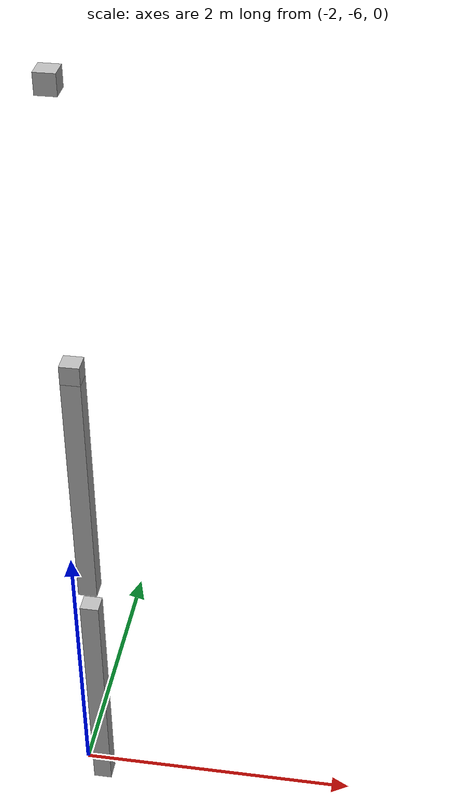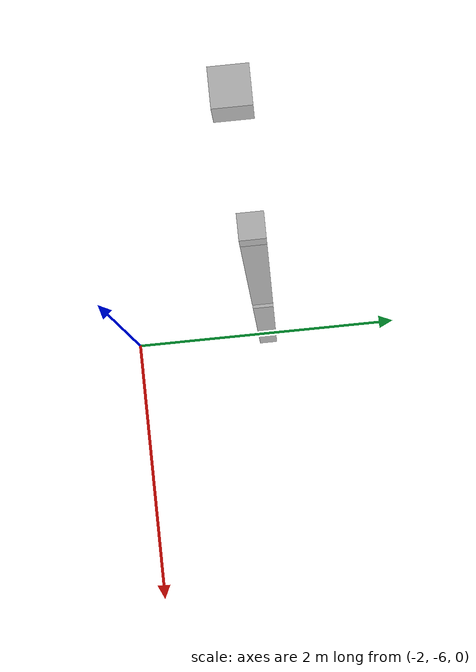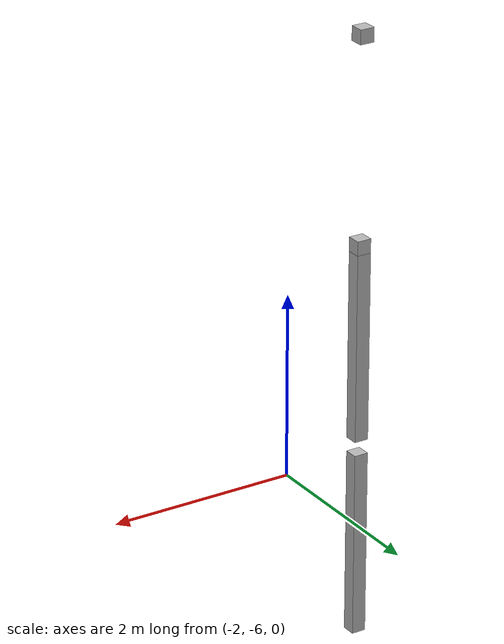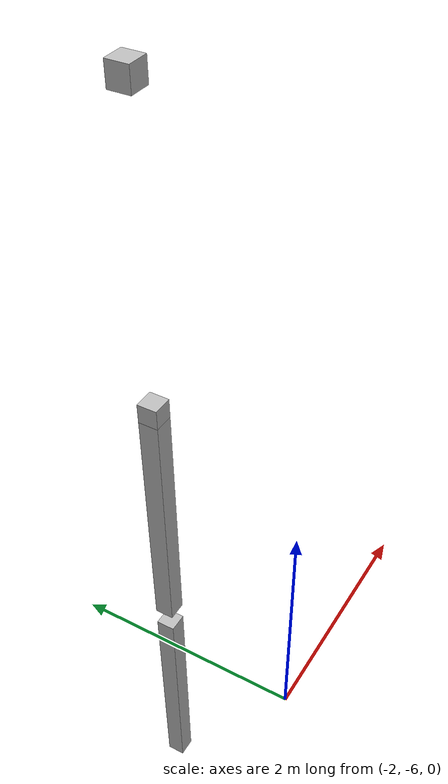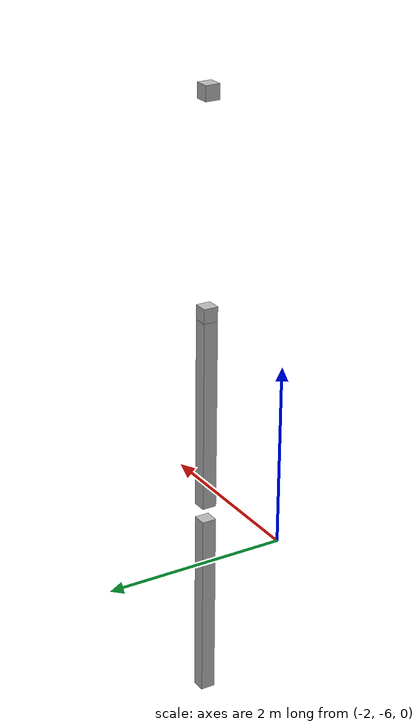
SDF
<sdf version="1.7">
 <world name="default">
  <model name="orthogonal_747_2.000.15_TS">
   <static>1</static>
   <link name="z_link_1_0_2">
    <inertial>
     <mass>1</mass>
     <inertia>
      <ixx>0.166667</ixx>
      <ixy>0</ixy>
      <ixz>0</ixz>
      <iyy>0.166667</iyy>
      <iyz>0</iyz>
      <izz>0.166667</izz>
     </inertia>
    </inertial>
    <pose>4.3 0 2.15 0 -0 0</pose>
    <visual name="visual_0">
     <laser_retro>827</laser_retro>
     <geometry><box><size>0.15 1e-06 2</size></box></geometry>
     <material>
      <script><name>Gazebo/Grey</name><uri>file://media/materials/scripts/gazebo.material</uri></script>
      <shader type="pixel"><normal_map>__default__</normal_map></shader>
      <ambient>0.678 0.498 0.659 1</ambient>
      <diffuse>0.7 0.7 0.7 1</diffuse>
      <specular>0.01 0.01 0.01 1</specular>
      <emissive>0 0 0 1</emissive>
     </material>
     <pose>0 -0.075 0 0 -0 0</pose>
     <transparency>1</transparency>
    </visual>
    <visual name="visual_1">
     <laser_retro>828</laser_retro>
     <geometry><box><size>0.15 1e-06 2</size></box></geometry>
     <material>
      <script><name>Gazebo/Grey</name><uri>file://media/materials/scripts/gazebo.material</uri></script>
      <shader type="pixel"><normal_map>__default__</normal_map></shader>
      <ambient>0.447 0.624 0.812 1</ambient>
      <diffuse>0.7 0.7 0.7 1</diffuse>
      <specular>0.01 0.01 0.01 1</specular>
      <emissive>0 0 0 1</emissive>
     </material>
     <pose>0 0.075 0 0 -0 0</pose>
     <transparency>1</transparency>
    </visual>
    <visual name="visual_2">
     <laser_retro>829</laser_retro>
     <geometry><box><size>0.15 0.15 1e-06</size></box></geometry>
     <material>
      <script><name>Gazebo/Grey</name><uri>file://media/materials/scripts/gazebo.material</uri></script>
      <shader type="pixel"><normal_map>__default__</normal_map></shader>
      <ambient>0.988 0.686 0.243 1</ambient>
      <diffuse>0.7 0.7 0.7 1</diffuse>
      <specular>0.01 0.01 0.01 1</specular>
      <emissive>0 0 0 1</emissive>
     </material>
     <pose>0 0 -1 0 -0 0</pose>
     <transparency>1</transparency>
    </visual>
    <visual name="visual_3">
     <laser_retro>830</laser_retro>
     <geometry><box><size>1e-06 0.15 2</size></box></geometry>
     <material>
      <script><name>Gazebo/Grey</name><uri>file://media/materials/scripts/gazebo.material</uri></script>
      <shader type="pixel"><normal_map>__default__</normal_map></shader>
      <ambient>0.988 0.914 0.31 1</ambient>
      <diffuse>0.7 0.7 0.7 1</diffuse>
      <specular>0.01 0.01 0.01 1</specular>
      <emissive>0 0 0 1</emissive>
     </material>
     <pose>0.075 0 0 0 -0 0</pose>
     <transparency>1</transparency>
    </visual>
    <visual name="visual_4">
     <laser_retro>831</laser_retro>
     <geometry><box><size>0.15 0.15 1e-06</size></box></geometry>
     <material>
      <script><name>Gazebo/Grey</name><uri>file://media/materials/scripts/gazebo.material</uri></script>
      <shader type="pixel"><normal_map>__default__</normal_map></shader>
      <ambient>0.937 0.161 0.161 1</ambient>
      <diffuse>0.7 0.7 0.7 1</diffuse>
      <specular>0.01 0.01 0.01 1</specular>
      <emissive>0 0 0 1</emissive>
     </material>
     <pose>0 0 1 0 -0 0</pose>
     <transparency>1</transparency>
    </visual>
    <visual name="visual_5">
     <laser_retro>832</laser_retro>
     <geometry><box><size>1e-06 0.15 2</size></box></geometry>
     <material>
      <script><name>Gazebo/Grey</name><uri>file://media/materials/scripts/gazebo.material</uri></script>
      <shader type="pixel"><normal_map>__default__</normal_map></shader>
      <ambient>0.541 0.886 0.204 1</ambient>
      <diffuse>0.7 0.7 0.7 1</diffuse>
      <specular>0.01 0.01 0.01 1</specular>
      <emissive>0 0 0 1</emissive>
     </material>
     <pose>-0.075 0 0 0 -0 0</pose>
     <transparency>1</transparency>
    </visual>
    <visual name="visual_texture">
     <geometry><box><size>0.149985 0.149985 1.9998</size></box></geometry>
     <material>
      <script>
       <uri>model://BASE_MODELS/simple_block_v2_textured/materials/scripts</uri>
       <uri>model://BASE_MODELS/simple_block_v2_textured/materials/textures</uri>
       <name>metal</name>
      </script>
     </material>
     <laser_retro>833</laser_retro>
    </visual>
    <collision name="collision">
     <geometry><box><size>0.15 0.15 2</size></box></geometry>
     <surface>
      <friction>
       <ode><mu>1</mu><mu2>1</mu2><fdir1>0 0 0</fdir1><slip1>0</slip1><slip2>0</slip2></ode>
       <torsional>
        <coefficient>1</coefficient>
        <patch_radius>0</patch_radius>
        <surface_radius>0</surface_radius>
        <use_patch_radius>1</use_patch_radius>
        <ode><slip>0</slip></ode>
       </torsional>
      </friction>
      <bounce><restitution_coefficient>0</restitution_coefficient><threshold>1e+06</threshold></bounce>
      <contact>
       <collide_without_contact>0</collide_without_contact>
       <collide_without_contact_bitmask>1</collide_without_contact_bitmask>
       <collide_bitmask>1</collide_bitmask>
       <ode>
        <soft_cfm>0</soft_cfm>
        <soft_erp>0.2</soft_erp>
        <kp>1e+13</kp>
        <kd>1</kd>
        <max_vel>0.01</max_vel>
        <min_depth>0</min_depth>
       </ode>
       <bullet>
        <split_impulse>1</split_impulse>
        <split_impulse_penetration_threshold>-0.01</split_impulse_penetration_threshold>
        <soft_cfm>0</soft_cfm>
        <soft_erp>0.2</soft_erp>
        <kp>1e+13</kp>
        <kd>1</kd>
       </bullet>
      </contact>
     </surface>
    </collision>
   </link>
   <link name="u_link_2_0_2">
    <inertial>
     <mass>1</mass>
     <inertia>
      <ixx>0.166667</ixx>
      <ixy>0</ixy>
      <ixz>0</ixz>
      <iyy>0.166667</iyy>
      <iyz>0</iyz>
      <izz>0.166667</izz>
     </inertia>
    </inertial>
    <pose>4.3 0 5.375 0 -0 0</pose>
    <visual name="visual_0">
     <laser_retro>1723</laser_retro>
     <geometry><box><size>0.15 1e-06 0.15</size></box></geometry>
     <material>
      <script><name>Gazebo/Grey</name><uri>file://media/materials/scripts/gazebo.material</uri></script>
      <shader type="pixel"><normal_map>__default__</normal_map></shader>
      <ambient>0.678 0.498 0.659 1</ambient>
      <diffuse>0.7 0.7 0.7 1</diffuse>
      <specular>0.01 0.01 0.01 1</specular>
      <emissive>0 0 0 1</emissive>
     </material>
     <pose>0 -0.075 0 0 -0 0</pose>
     <transparency>1</transparency>
    </visual>
    <visual name="visual_1">
     <laser_retro>1724</laser_retro>
     <geometry><box><size>0.15 1e-06 0.15</size></box></geometry>
     <material>
      <script><name>Gazebo/Grey</name><uri>file://media/materials/scripts/gazebo.material</uri></script>
      <shader type="pixel"><normal_map>__default__</normal_map></shader>
      <ambient>0.447 0.624 0.812 1</ambient>
      <diffuse>0.7 0.7 0.7 1</diffuse>
      <specular>0.01 0.01 0.01 1</specular>
      <emissive>0 0 0 1</emissive>
     </material>
     <pose>0 0.075 0 0 -0 0</pose>
     <transparency>1</transparency>
    </visual>
    <visual name="visual_2">
     <laser_retro>1725</laser_retro>
     <geometry><box><size>0.15 0.15 1e-06</size></box></geometry>
     <material>
      <script><name>Gazebo/Grey</name><uri>file://media/materials/scripts/gazebo.material</uri></script>
      <shader type="pixel"><normal_map>__default__</normal_map></shader>
      <ambient>0.988 0.686 0.243 1</ambient>
      <diffuse>0.7 0.7 0.7 1</diffuse>
      <specular>0.01 0.01 0.01 1</specular>
      <emissive>0 0 0 1</emissive>
     </material>
     <pose>0 0 -0.075 0 -0 0</pose>
     <transparency>1</transparency>
    </visual>
    <visual name="visual_3">
     <laser_retro>1726</laser_retro>
     <geometry><box><size>1e-06 0.15 0.15</size></box></geometry>
     <material>
      <script><name>Gazebo/Grey</name><uri>file://media/materials/scripts/gazebo.material</uri></script>
      <shader type="pixel"><normal_map>__default__</normal_map></shader>
      <ambient>0.988 0.914 0.31 1</ambient>
      <diffuse>0.7 0.7 0.7 1</diffuse>
      <specular>0.01 0.01 0.01 1</specular>
      <emissive>0 0 0 1</emissive>
     </material>
     <pose>0.075 0 0 0 -0 0</pose>
     <transparency>1</transparency>
    </visual>
    <visual name="visual_4">
     <laser_retro>1727</laser_retro>
     <geometry><box><size>0.15 0.15 1e-06</size></box></geometry>
     <material>
      <script><name>Gazebo/Grey</name><uri>file://media/materials/scripts/gazebo.material</uri></script>
      <shader type="pixel"><normal_map>__default__</normal_map></shader>
      <ambient>0.937 0.161 0.161 1</ambient>
      <diffuse>0.7 0.7 0.7 1</diffuse>
      <specular>0.01 0.01 0.01 1</specular>
      <emissive>0 0 0 1</emissive>
     </material>
     <pose>0 0 0.075 0 -0 0</pose>
     <transparency>1</transparency>
    </visual>
    <visual name="visual_5">
     <laser_retro>1728</laser_retro>
     <geometry><box><size>1e-06 0.15 0.15</size></box></geometry>
     <material>
      <script><name>Gazebo/Grey</name><uri>file://media/materials/scripts/gazebo.material</uri></script>
      <shader type="pixel"><normal_map>__default__</normal_map></shader>
      <ambient>0.541 0.886 0.204 1</ambient>
      <diffuse>0.7 0.7 0.7 1</diffuse>
      <specular>0.01 0.01 0.01 1</specular>
      <emissive>0 0 0 1</emissive>
     </material>
     <pose>-0.075 0 0 0 -0 0</pose>
     <transparency>1</transparency>
    </visual>
    <visual name="visual_texture">
     <geometry><box><size>0.149985 0.149985 0.149985</size></box></geometry>
     <material>
      <script>
       <uri>model://BASE_MODELS/simple_block_v2_textured/materials/scripts</uri>
       <uri>model://BASE_MODELS/simple_block_v2_textured/materials/textures</uri>
       <name>metal</name>
      </script>
     </material>
     <laser_retro>1729</laser_retro>
    </visual>
    <collision name="collision">
     <geometry><box><size>0.15 0.15 0.15</size></box></geometry>
     <surface>
      <friction>
       <ode><mu>1</mu><mu2>1</mu2><fdir1>0 0 0</fdir1><slip1>0</slip1><slip2>0</slip2></ode>
       <torsional>
        <coefficient>1</coefficient>
        <patch_radius>0</patch_radius>
        <surface_radius>0</surface_radius>
        <use_patch_radius>1</use_patch_radius>
        <ode><slip>0</slip></ode>
       </torsional>
      </friction>
      <bounce><restitution_coefficient>0</restitution_coefficient><threshold>1e+06</threshold></bounce>
      <contact>
       <collide_without_contact>0</collide_without_contact>
       <collide_without_contact_bitmask>1</collide_without_contact_bitmask>
       <collide_bitmask>1</collide_bitmask>
       <ode>
        <soft_cfm>0</soft_cfm>
        <soft_erp>0.2</soft_erp>
        <kp>1e+13</kp>
        <kd>1</kd>
        <max_vel>0.01</max_vel>
        <min_depth>0</min_depth>
       </ode>
       <bullet>
        <split_impulse>1</split_impulse>
        <split_impulse_penetration_threshold>-0.01</split_impulse_penetration_threshold>
        <soft_cfm>0</soft_cfm>
        <soft_erp>0.2</soft_erp>
        <kp>1e+13</kp>
        <kd>1</kd>
       </bullet>
      </contact>
     </surface>
    </collision>
   </link>
   <link name="z_link_2_0_2">
    <inertial>
     <mass>1</mass>
     <inertia>
      <ixx>0.166667</ixx>
      <ixy>0</ixy>
      <ixz>0</ixz>
      <iyy>0.166667</iyy>
      <iyz>0</iyz>
      <izz>0.166667</izz>
     </inertia>
    </inertial>
    <pose>4.3 0 4.3 0 -0 0</pose>
    <visual name="visual_0">
     <laser_retro>1730</laser_retro>
     <geometry><box><size>0.15 1e-06 2</size></box></geometry>
     <material>
      <script><name>Gazebo/Grey</name><uri>file://media/materials/scripts/gazebo.material</uri></script>
      <shader type="pixel"><normal_map>__default__</normal_map></shader>
      <ambient>0.678 0.498 0.659 1</ambient>
      <diffuse>0.7 0.7 0.7 1</diffuse>
      <specular>0.01 0.01 0.01 1</specular>
      <emissive>0 0 0 1</emissive>
     </material>
     <pose>0 -0.075 0 0 -0 0</pose>
     <transparency>1</transparency>
    </visual>
    <visual name="visual_1">
     <laser_retro>1731</laser_retro>
     <geometry><box><size>0.15 1e-06 2</size></box></geometry>
     <material>
      <script><name>Gazebo/Grey</name><uri>file://media/materials/scripts/gazebo.material</uri></script>
      <shader type="pixel"><normal_map>__default__</normal_map></shader>
      <ambient>0.447 0.624 0.812 1</ambient>
      <diffuse>0.7 0.7 0.7 1</diffuse>
      <specular>0.01 0.01 0.01 1</specular>
      <emissive>0 0 0 1</emissive>
     </material>
     <pose>0 0.075 0 0 -0 0</pose>
     <transparency>1</transparency>
    </visual>
    <visual name="visual_2">
     <laser_retro>1732</laser_retro>
     <geometry><box><size>0.15 0.15 1e-06</size></box></geometry>
     <material>
      <script><name>Gazebo/Grey</name><uri>file://media/materials/scripts/gazebo.material</uri></script>
      <shader type="pixel"><normal_map>__default__</normal_map></shader>
      <ambient>0.988 0.686 0.243 1</ambient>
      <diffuse>0.7 0.7 0.7 1</diffuse>
      <specular>0.01 0.01 0.01 1</specular>
      <emissive>0 0 0 1</emissive>
     </material>
     <pose>0 0 -1 0 -0 0</pose>
     <transparency>1</transparency>
    </visual>
    <visual name="visual_3">
     <laser_retro>1733</laser_retro>
     <geometry><box><size>1e-06 0.15 2</size></box></geometry>
     <material>
      <script><name>Gazebo/Grey</name><uri>file://media/materials/scripts/gazebo.material</uri></script>
      <shader type="pixel"><normal_map>__default__</normal_map></shader>
      <ambient>0.988 0.914 0.31 1</ambient>
      <diffuse>0.7 0.7 0.7 1</diffuse>
      <specular>0.01 0.01 0.01 1</specular>
      <emissive>0 0 0 1</emissive>
     </material>
     <pose>0.075 0 0 0 -0 0</pose>
     <transparency>1</transparency>
    </visual>
    <visual name="visual_4">
     <laser_retro>1734</laser_retro>
     <geometry><box><size>0.15 0.15 1e-06</size></box></geometry>
     <material>
      <script><name>Gazebo/Grey</name><uri>file://media/materials/scripts/gazebo.material</uri></script>
      <shader type="pixel"><normal_map>__default__</normal_map></shader>
      <ambient>0.937 0.161 0.161 1</ambient>
      <diffuse>0.7 0.7 0.7 1</diffuse>
      <specular>0.01 0.01 0.01 1</specular>
      <emissive>0 0 0 1</emissive>
     </material>
     <pose>0 0 1 0 -0 0</pose>
     <transparency>1</transparency>
    </visual>
    <visual name="visual_5">
     <laser_retro>1735</laser_retro>
     <geometry><box><size>1e-06 0.15 2</size></box></geometry>
     <material>
      <script><name>Gazebo/Grey</name><uri>file://media/materials/scripts/gazebo.material</uri></script>
      <shader type="pixel"><normal_map>__default__</normal_map></shader>
      <ambient>0.541 0.886 0.204 1</ambient>
      <diffuse>0.7 0.7 0.7 1</diffuse>
      <specular>0.01 0.01 0.01 1</specular>
      <emissive>0 0 0 1</emissive>
     </material>
     <pose>-0.075 0 0 0 -0 0</pose>
     <transparency>1</transparency>
    </visual>
    <visual name="visual_texture">
     <geometry><box><size>0.149985 0.149985 1.9998</size></box></geometry>
     <material>
      <script>
       <uri>model://BASE_MODELS/simple_block_v2_textured/materials/scripts</uri>
       <uri>model://BASE_MODELS/simple_block_v2_textured/materials/textures</uri>
       <name>metal</name>
      </script>
     </material>
     <laser_retro>1736</laser_retro>
    </visual>
    <collision name="collision">
     <geometry><box><size>0.15 0.15 2</size></box></geometry>
     <surface>
      <friction>
       <ode><mu>1</mu><mu2>1</mu2><fdir1>0 0 0</fdir1><slip1>0</slip1><slip2>0</slip2></ode>
       <torsional>
        <coefficient>1</coefficient>
        <patch_radius>0</patch_radius>
        <surface_radius>0</surface_radius>
        <use_patch_radius>1</use_patch_radius>
        <ode><slip>0</slip></ode>
       </torsional>
      </friction>
      <bounce><restitution_coefficient>0</restitution_coefficient><threshold>1e+06</threshold></bounce>
      <contact>
       <collide_without_contact>0</collide_without_contact>
       <collide_without_contact_bitmask>1</collide_without_contact_bitmask>
       <collide_bitmask>1</collide_bitmask>
       <ode>
        <soft_cfm>0</soft_cfm>
        <soft_erp>0.2</soft_erp>
        <kp>1e+13</kp>
        <kd>1</kd>
        <max_vel>0.01</max_vel>
        <min_depth>0</min_depth>
       </ode>
       <bullet>
        <split_impulse>1</split_impulse>
        <split_impulse_penetration_threshold>-0.01</split_impulse_penetration_threshold>
        <soft_cfm>0</soft_cfm>
        <soft_erp>0.2</soft_erp>
        <kp>1e+13</kp>
        <kd>1</kd>
       </bullet>
      </contact>
     </surface>
    </collision>
   </link>
   <link name="u_link_3_0_2">
    <inertial>
     <mass>1</mass>
     <inertia>
      <ixx>0.166667</ixx>
      <ixy>0</ixy>
      <ixz>0</ixz>
      <iyy>0.166667</iyy>
      <iyz>0</iyz>
      <izz>0.166667</izz>
     </inertia>
    </inertial>
    <pose>4.3 0 7.525 0 -0 0</pose>
    <visual name="visual_0">
     <laser_retro>2626</laser_retro>
     <geometry><box><size>0.15 1e-06 0.15</size></box></geometry>
     <material>
      <script><name>Gazebo/Grey</name><uri>file://media/materials/scripts/gazebo.material</uri></script>
      <shader type="pixel"><normal_map>__default__</normal_map></shader>
      <ambient>0.678 0.498 0.659 1</ambient>
      <diffuse>0.7 0.7 0.7 1</diffuse>
      <specular>0.01 0.01 0.01 1</specular>
      <emissive>0 0 0 1</emissive>
     </material>
     <pose>0 -0.075 0 0 -0 0</pose>
     <transparency>1</transparency>
    </visual>
    <visual name="visual_1">
     <laser_retro>2627</laser_retro>
     <geometry><box><size>0.15 1e-06 0.15</size></box></geometry>
     <material>
      <script><name>Gazebo/Grey</name><uri>file://media/materials/scripts/gazebo.material</uri></script>
      <shader type="pixel"><normal_map>__default__</normal_map></shader>
      <ambient>0.447 0.624 0.812 1</ambient>
      <diffuse>0.7 0.7 0.7 1</diffuse>
      <specular>0.01 0.01 0.01 1</specular>
      <emissive>0 0 0 1</emissive>
     </material>
     <pose>0 0.075 0 0 -0 0</pose>
     <transparency>1</transparency>
    </visual>
    <visual name="visual_2">
     <laser_retro>2628</laser_retro>
     <geometry><box><size>0.15 0.15 1e-06</size></box></geometry>
     <material>
      <script><name>Gazebo/Grey</name><uri>file://media/materials/scripts/gazebo.material</uri></script>
      <shader type="pixel"><normal_map>__default__</normal_map></shader>
      <ambient>0.988 0.686 0.243 1</ambient>
      <diffuse>0.7 0.7 0.7 1</diffuse>
      <specular>0.01 0.01 0.01 1</specular>
      <emissive>0 0 0 1</emissive>
     </material>
     <pose>0 0 -0.075 0 -0 0</pose>
     <transparency>1</transparency>
    </visual>
    <visual name="visual_3">
     <laser_retro>2629</laser_retro>
     <geometry><box><size>1e-06 0.15 0.15</size></box></geometry>
     <material>
      <script><name>Gazebo/Grey</name><uri>file://media/materials/scripts/gazebo.material</uri></script>
      <shader type="pixel"><normal_map>__default__</normal_map></shader>
      <ambient>0.988 0.914 0.31 1</ambient>
      <diffuse>0.7 0.7 0.7 1</diffuse>
      <specular>0.01 0.01 0.01 1</specular>
      <emissive>0 0 0 1</emissive>
     </material>
     <pose>0.075 0 0 0 -0 0</pose>
     <transparency>1</transparency>
    </visual>
    <visual name="visual_4">
     <laser_retro>2630</laser_retro>
     <geometry><box><size>0.15 0.15 1e-06</size></box></geometry>
     <material>
      <script><name>Gazebo/Grey</name><uri>file://media/materials/scripts/gazebo.material</uri></script>
      <shader type="pixel"><normal_map>__default__</normal_map></shader>
      <ambient>0.937 0.161 0.161 1</ambient>
      <diffuse>0.7 0.7 0.7 1</diffuse>
      <specular>0.01 0.01 0.01 1</specular>
      <emissive>0 0 0 1</emissive>
     </material>
     <pose>0 0 0.075 0 -0 0</pose>
     <transparency>1</transparency>
    </visual>
    <visual name="visual_5">
     <laser_retro>2631</laser_retro>
     <geometry><box><size>1e-06 0.15 0.15</size></box></geometry>
     <material>
      <script><name>Gazebo/Grey</name><uri>file://media/materials/scripts/gazebo.material</uri></script>
      <shader type="pixel"><normal_map>__default__</normal_map></shader>
      <ambient>0.541 0.886 0.204 1</ambient>
      <diffuse>0.7 0.7 0.7 1</diffuse>
      <specular>0.01 0.01 0.01 1</specular>
      <emissive>0 0 0 1</emissive>
     </material>
     <pose>-0.075 0 0 0 -0 0</pose>
     <transparency>1</transparency>
    </visual>
    <visual name="visual_texture">
     <geometry><box><size>0.149985 0.149985 0.149985</size></box></geometry>
     <material>
      <script>
       <uri>model://BASE_MODELS/simple_block_v2_textured/materials/scripts</uri>
       <uri>model://BASE_MODELS/simple_block_v2_textured/materials/textures</uri>
       <name>metal</name>
      </script>
     </material>
     <laser_retro>2632</laser_retro>
    </visual>
    <collision name="collision">
     <geometry><box><size>0.15 0.15 0.15</size></box></geometry>
     <surface>
      <friction>
       <ode><mu>1</mu><mu2>1</mu2><fdir1>0 0 0</fdir1><slip1>0</slip1><slip2>0</slip2></ode>
       <torsional>
        <coefficient>1</coefficient>
        <patch_radius>0</patch_radius>
        <surface_radius>0</surface_radius>
        <use_patch_radius>1</use_patch_radius>
        <ode><slip>0</slip></ode>
       </torsional>
      </friction>
      <bounce><restitution_coefficient>0</restitution_coefficient><threshold>1e+06</threshold></bounce>
      <contact>
       <collide_without_contact>0</collide_without_contact>
       <collide_without_contact_bitmask>1</collide_without_contact_bitmask>
       <collide_bitmask>1</collide_bitmask>
       <ode>
        <soft_cfm>0</soft_cfm>
        <soft_erp>0.2</soft_erp>
        <kp>1e+13</kp>
        <kd>1</kd>
        <max_vel>0.01</max_vel>
        <min_depth>0</min_depth>
       </ode>
       <bullet>
        <split_impulse>1</split_impulse>
        <split_impulse_penetration_threshold>-0.01</split_impulse_penetration_threshold>
        <soft_cfm>0</soft_cfm>
        <soft_erp>0.2</soft_erp>
        <kp>1e+13</kp>
        <kd>1</kd>
       </bullet>
      </contact>
     </surface>
    </collision>
   </link>
   <pose>-6.47624 -5 -2.5 0 -0 0</pose>
  </model>
 </world>
</sdf>
